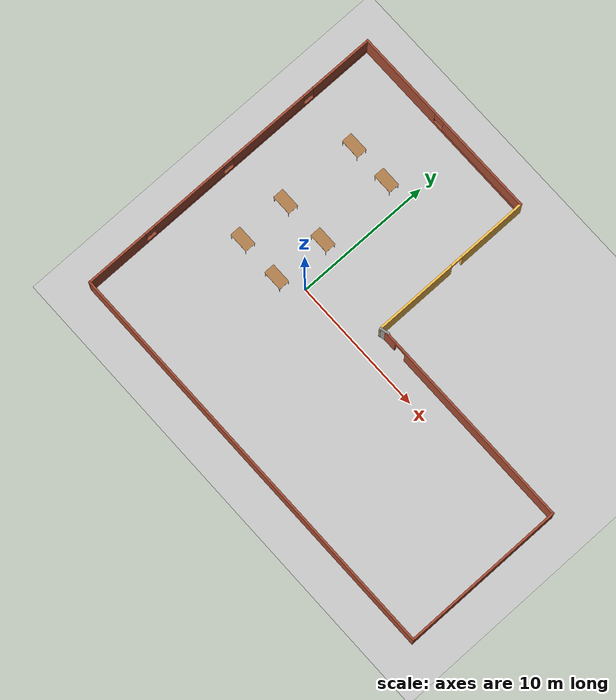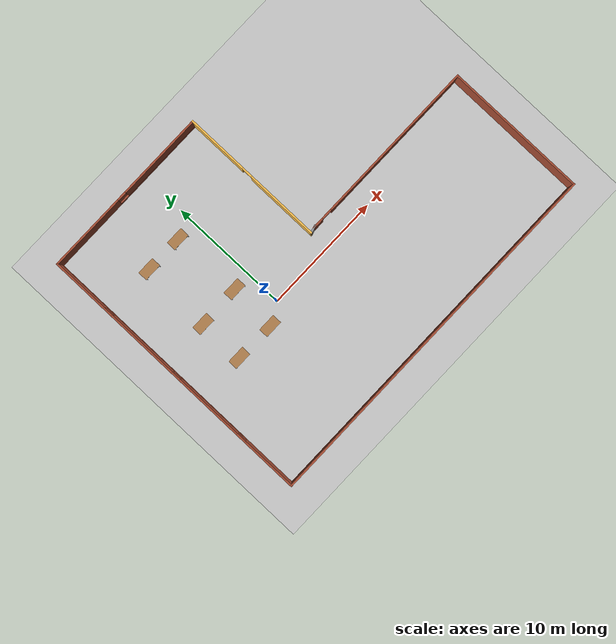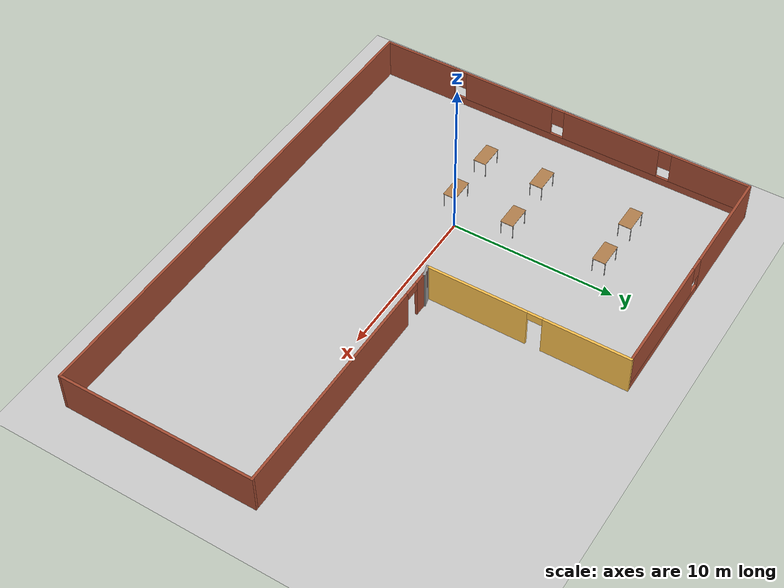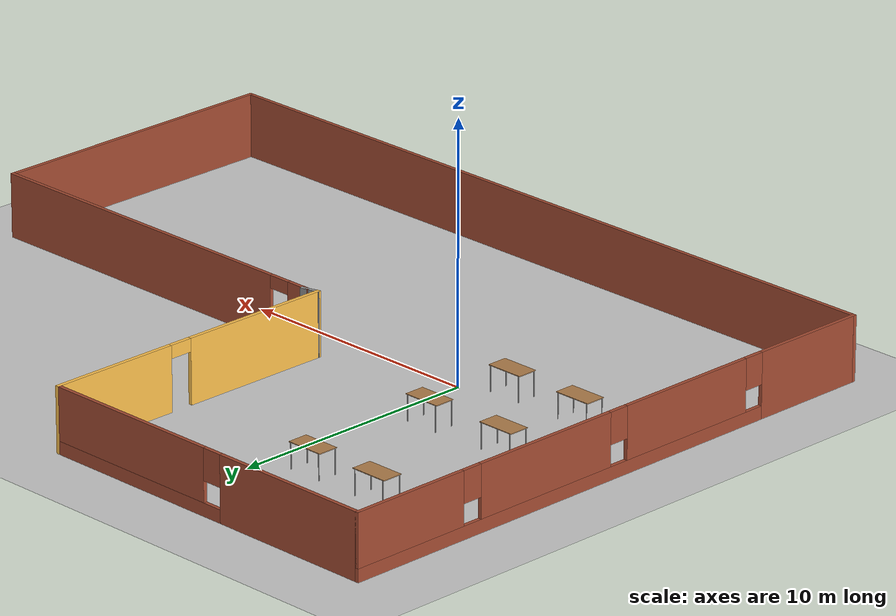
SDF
<sdf version="1.6">
 <world name="default">
  <light name="sun" type="directional">
   <pose>0 0 10 0 -0 0</pose>
   <diffuse>0.8 0.8 0.8 1</diffuse>
   <specular>0.2 0.2 0.2 1</specular>
   <attenuation>
    <range>1000</range>
    <constant>0.9</constant>
    <linear>0.01</linear>
    <quadratic>0.001</quadratic>
   </attenuation>
   <direction>-0.5 0.1 -0.9</direction>
  </light>
  <model name="ground_plane">
   <static>1</static>
   <link name="link">
    <collision name="collision">
     <geometry><plane><normal>0 0 1</normal><size>100 100</size></plane></geometry>
     <surface>
      <contact><collide_bitmask>65535</collide_bitmask></contact>
      <friction><ode><mu>100</mu><mu2>50</mu2></ode></friction>
     </surface>
    </collision>
    <visual name="visual">
     <cast_shadows>0</cast_shadows>
     <geometry><plane><normal>0 0 1</normal><size>100 100</size></plane></geometry>
     <material>
      <script><uri>file://media/materials/scripts/gazebo.material</uri><name>Gazebo/Grey</name></script>
     </material>
    </visual>
   </link>
  </model>
  <gravity>0 0 -9.8</gravity>
  <magnetic_field>6e-06 2.3e-05 -4.2e-05</magnetic_field>
  <atmosphere type="adiabatic"/>
  <physics name="default_physics" default="0" type="ode">
   <max_step_size>0.001</max_step_size>
   <real_time_factor>1</real_time_factor>
   <real_time_update_rate>1000</real_time_update_rate>
  </physics>
  <scene><ambient>0.4 0.4 0.4 1</ambient><background>0.7 0.7 0.7 1</background><shadows>1</shadows></scene>
  <spherical_coordinates>
   <surface_model>EARTH_WGS84</surface_model>
   <latitude_deg>0</latitude_deg>
   <longitude_deg>0</longitude_deg>
   <elevation>0</elevation>
   <heading_deg>0</heading_deg>
  </spherical_coordinates>
  <model name="newhouse">
   <pose>6.11591 1.73083 0 0 -0 0</pose>
   <link name="Wall_0">
    <pose>7.5 -0.075 0 0 -0 0</pose>
    <visual name="Wall_0_Visual_0">
     <pose>-7.36319 0 1.25 0 -0 0</pose>
     <geometry><box><size>1.02362 0.15 2.5</size></box></geometry>
     <material>
      <script><uri>file://media/materials/scripts/gazebo.material</uri><name>Gazebo/Bricks</name></script>
      <ambient>1 1 1 1</ambient>
     </material>
     <meta><layer>0</layer></meta>
    </visual>
    <collision name="Wall_0_Collision_0">
     <geometry><box><size>1.02362 0.15 2.5</size></box></geometry>
     <pose>-7.36319 0 1.25 0 -0 0</pose>
    </collision>
    <visual name="Wall_0_Visual_1">
     <pose>0.96181 0 1.25 0 -0 0</pose>
     <geometry><box><size>13.8264 0.15 2.5</size></box></geometry>
     <material>
      <script><uri>file://media/materials/scripts/gazebo.material</uri><name>Gazebo/Bricks</name></script>
      <ambient>1 1 1 1</ambient>
     </material>
     <meta><layer>0</layer></meta>
    </visual>
    <collision name="Wall_0_Collision_1">
     <geometry><box><size>13.8264 0.15 2.5</size></box></geometry>
     <pose>0.96181 0 1.25 0 -0 0</pose>
    </collision>
    <visual name="Wall_0_Visual_2">
     <pose>-6.40138 0 2.25 0 -0 0</pose>
     <geometry><box><size>0.9 0.15 0.5</size></box></geometry>
     <material>
      <script><uri>file://media/materials/scripts/gazebo.material</uri><name>Gazebo/Bricks</name></script>
      <ambient>1 1 1 1</ambient>
     </material>
     <meta><layer>0</layer></meta>
    </visual>
    <collision name="Wall_0_Collision_2">
     <geometry><box><size>0.9 0.15 0.5</size></box></geometry>
     <pose>-6.40138 0 2.25 0 -0 0</pose>
    </collision>
   </link>
   <link name="Wall_1">
    <collision name="Wall_1_Collision">
     <geometry><box><size>12 0.15 2.5</size></box></geometry>
     <pose>0 0 1.25 0 -0 0</pose>
    </collision>
    <visual name="Wall_1_Visual">
     <pose>0 0 1.25 0 -0 0</pose>
     <geometry><box><size>12 0.15 2.5</size></box></geometry>
     <material>
      <script><uri>file://media/materials/scripts/gazebo.material</uri><name>Gazebo/Bricks</name></script>
      <ambient>1 1 1 1</ambient>
     </material>
     <meta><layer>0</layer></meta>
    </visual>
    <pose>15.3 -6 0 0 0 -1.5708</pose>
   </link>
   <link name="Wall_2">
    <collision name="Wall_2_Collision">
     <geometry><box><size>30.75 0.15 2.5</size></box></geometry>
     <pose>0 0 1.25 0 -0 0</pose>
    </collision>
    <visual name="Wall_2_Visual">
     <pose>0 0 1.25 0 -0 0</pose>
     <geometry><box><size>30.75 0.15 2.5</size></box></geometry>
     <material>
      <script><uri>file://media/materials/scripts/gazebo.material</uri><name>Gazebo/Bricks</name></script>
      <ambient>1 1 1 1</ambient>
     </material>
     <meta><layer>0</layer></meta>
    </visual>
    <pose>0 -11.925 0 0 -0 3.14159</pose>
   </link>
   <link name="Wall_3">
    <pose>-15.3 0 0 0 -0 1.5708</pose>
    <visual name="Wall_3_Visual_0">
     <pose>-9.60839 0 1.25 0 -0 0</pose>
     <geometry><box><size>4.78322 0.15 2.5</size></box></geometry>
     <material>
      <script><uri>file://media/materials/scripts/gazebo.material</uri><name>Gazebo/Bricks</name></script>
      <ambient>1 1 1 1</ambient>
     </material>
     <meta><layer>0</layer></meta>
    </visual>
    <collision name="Wall_3_Collision_0">
     <geometry><box><size>4.78322 0.15 2.5</size></box></geometry>
     <pose>-9.60839 0 1.25 0 -0 0</pose>
    </collision>
    <visual name="Wall_3_Visual_1">
     <pose>2.39161 0 0.25 0 -0 0</pose>
     <geometry><box><size>19.2168 0.15 0.5</size></box></geometry>
     <material>
      <script><uri>file://media/materials/scripts/gazebo.material</uri><name>Gazebo/Bricks</name></script>
      <ambient>1 1 1 1</ambient>
     </material>
     <meta><layer>0</layer></meta>
    </visual>
    <collision name="Wall_3_Collision_1">
     <geometry><box><size>19.2168 0.15 0.5</size></box></geometry>
     <pose>2.39161 0 0.25 0 -0 0</pose>
    </collision>
    <visual name="Wall_3_Visual_2">
     <pose>-3.49367 0 1.5 0 -0 0</pose>
     <geometry><box><size>5.84622 0.15 2</size></box></geometry>
     <material>
      <script><uri>file://media/materials/scripts/gazebo.material</uri><name>Gazebo/Bricks</name></script>
      <ambient>1 1 1 1</ambient>
     </material>
     <meta><layer>0</layer></meta>
    </visual>
    <collision name="Wall_3_Collision_2">
     <geometry><box><size>5.84622 0.15 2</size></box></geometry>
     <pose>-3.49367 0 1.5 0 -0 0</pose>
    </collision>
    <visual name="Wall_3_Visual_3">
     <pose>3.29248 0 1.5 0 -0 0</pose>
     <geometry><box><size>6.12606 0.15 2</size></box></geometry>
     <material>
      <script><uri>file://media/materials/scripts/gazebo.material</uri><name>Gazebo/Bricks</name></script>
      <ambient>1 1 1 1</ambient>
     </material>
     <meta><layer>0</layer></meta>
    </visual>
    <collision name="Wall_3_Collision_3">
     <geometry><box><size>6.12606 0.15 2</size></box></geometry>
     <pose>3.29248 0 1.5 0 -0 0</pose>
    </collision>
    <visual name="Wall_3_Visual_4">
     <pose>9.57775 0 1.5 0 -0 0</pose>
     <geometry><box><size>4.84449 0.15 2</size></box></geometry>
     <material>
      <script><uri>file://media/materials/scripts/gazebo.material</uri><name>Gazebo/Bricks</name></script>
      <ambient>1 1 1 1</ambient>
     </material>
     <meta><layer>0</layer></meta>
    </visual>
    <collision name="Wall_3_Collision_4">
     <geometry><box><size>4.84449 0.15 2</size></box></geometry>
     <pose>9.57775 0 1.5 0 -0 0</pose>
    </collision>
    <visual name="Wall_3_Visual_5">
     <pose>-6.81678 0 1.9 0 -0 0</pose>
     <geometry><box><size>0.8 0.15 1.2</size></box></geometry>
     <material>
      <script><uri>file://media/materials/scripts/gazebo.material</uri><name>Gazebo/Bricks</name></script>
      <ambient>1 1 1 1</ambient>
     </material>
     <meta><layer>0</layer></meta>
    </visual>
    <collision name="Wall_3_Collision_5">
     <geometry><box><size>0.8 0.15 1.2</size></box></geometry>
     <pose>-6.81678 0 1.9 0 -0 0</pose>
    </collision>
    <visual name="Wall_3_Visual_6">
     <pose>-0.170557 0 1.9 0 -0 0</pose>
     <geometry><box><size>0.8 0.15 1.2</size></box></geometry>
     <material>
      <script><uri>file://media/materials/scripts/gazebo.material</uri><name>Gazebo/Bricks</name></script>
      <ambient>1 1 1 1</ambient>
     </material>
     <meta><layer>0</layer></meta>
    </visual>
    <collision name="Wall_3_Collision_6">
     <geometry><box><size>0.8 0.15 1.2</size></box></geometry>
     <pose>-0.170557 0 1.9 0 -0 0</pose>
    </collision>
    <visual name="Wall_3_Visual_7">
     <pose>6.75551 0 1.9 0 -0 0</pose>
     <geometry><box><size>0.8 0.15 1.2</size></box></geometry>
     <material>
      <script><uri>file://media/materials/scripts/gazebo.material</uri><name>Gazebo/Bricks</name></script>
      <ambient>1 1 1 1</ambient>
     </material>
     <meta><layer>0</layer></meta>
    </visual>
    <collision name="Wall_3_Collision_7">
     <geometry><box><size>0.8 0.15 1.2</size></box></geometry>
     <pose>6.75551 0 1.9 0 -0 0</pose>
    </collision>
   </link>
   <link name="Wall_4">
    <pose>-8 11.925 0 0 -0 0</pose>
    <visual name="Wall_4_Visual_0">
     <pose>-4.07996 0 1.25 0 -0 0</pose>
     <geometry><box><size>6.59007 0.15 2.5</size></box></geometry>
     <material>
      <script><uri>file://media/materials/scripts/gazebo.material</uri><name>Gazebo/Bricks</name></script>
      <ambient>1 1 1 1</ambient>
     </material>
     <meta><layer>0</layer></meta>
    </visual>
    <collision name="Wall_4_Collision_0">
     <geometry><box><size>6.59007 0.15 2.5</size></box></geometry>
     <pose>-4.07996 0 1.25 0 -0 0</pose>
    </collision>
    <visual name="Wall_4_Visual_1">
     <pose>3.29504 0 0.25 0 -0 0</pose>
     <geometry><box><size>8.15993 0.15 0.5</size></box></geometry>
     <material>
      <script><uri>file://media/materials/scripts/gazebo.material</uri><name>Gazebo/Bricks</name></script>
      <ambient>1 1 1 1</ambient>
     </material>
     <meta><layer>0</layer></meta>
    </visual>
    <collision name="Wall_4_Collision_1">
     <geometry><box><size>8.15993 0.15 0.5</size></box></geometry>
     <pose>3.29504 0 0.25 0 -0 0</pose>
    </collision>
    <visual name="Wall_4_Visual_2">
     <pose>3.69504 0 1.5 0 -0 0</pose>
     <geometry><box><size>7.35993 0.15 2</size></box></geometry>
     <material>
      <script><uri>file://media/materials/scripts/gazebo.material</uri><name>Gazebo/Bricks</name></script>
      <ambient>1 1 1 1</ambient>
     </material>
     <meta><layer>0</layer></meta>
    </visual>
    <collision name="Wall_4_Collision_2">
     <geometry><box><size>7.35993 0.15 2</size></box></geometry>
     <pose>3.69504 0 1.5 0 -0 0</pose>
    </collision>
    <visual name="Wall_4_Visual_3">
     <pose>-0.384929 0 1.9 0 -0 0</pose>
     <geometry><box><size>0.8 0.15 1.2</size></box></geometry>
     <material>
      <script><uri>file://media/materials/scripts/gazebo.material</uri><name>Gazebo/Bricks</name></script>
      <ambient>1 1 1 1</ambient>
     </material>
     <meta><layer>0</layer></meta>
    </visual>
    <collision name="Wall_4_Collision_3">
     <geometry><box><size>0.8 0.15 1.2</size></box></geometry>
     <pose>-0.384929 0 1.9 0 -0 0</pose>
    </collision>
   </link>
   <link name="Wall_5">
    <pose>-0.7 5.875 0 0 0 -1.5708</pose>
    <visual name="Wall_5_Visual_0">
     <pose>-3.53226 0 1.25 0 -0 0</pose>
     <geometry><box><size>5.18548 0.15 2.5</size></box></geometry>
     <material>
      <script><uri>file://media/materials/scripts/gazebo.material</uri><name>Gazebo/Grey</name></script>
      <ambient>1 0.764706 0.305882 1</ambient>
     </material>
     <meta><layer>0</layer></meta>
    </visual>
    <collision name="Wall_5_Collision_0">
     <geometry><box><size>5.18548 0.15 2.5</size></box></geometry>
     <pose>-3.53226 0 1.25 0 -0 0</pose>
    </collision>
    <visual name="Wall_5_Visual_1">
     <pose>3.04274 0 1.25 0 -0 0</pose>
     <geometry><box><size>6.16452 0.15 2.5</size></box></geometry>
     <material>
      <script><uri>file://media/materials/scripts/gazebo.material</uri><name>Gazebo/Grey</name></script>
      <ambient>1 0.764706 0.305882 1</ambient>
     </material>
     <meta><layer>0</layer></meta>
    </visual>
    <collision name="Wall_5_Collision_1">
     <geometry><box><size>6.16452 0.15 2.5</size></box></geometry>
     <pose>3.04274 0 1.25 0 -0 0</pose>
    </collision>
    <visual name="Wall_5_Visual_2">
     <pose>-0.489516 0 2.25 0 -0 0</pose>
     <geometry><box><size>0.9 0.15 0.5</size></box></geometry>
     <material>
      <script><uri>file://media/materials/scripts/gazebo.material</uri><name>Gazebo/Grey</name></script>
      <ambient>1 0.764706 0.305882 1</ambient>
     </material>
     <meta><layer>0</layer></meta>
    </visual>
    <collision name="Wall_5_Collision_2">
     <geometry><box><size>0.9 0.15 0.5</size></box></geometry>
     <pose>-0.489516 0 2.25 0 -0 0</pose>
    </collision>
   </link>
   <link name="Wall_6">
    <collision name="Wall_6_Collision">
     <geometry><box><size>0.75 0.15 2.5</size></box></geometry>
     <pose>0 0 1.25 0 -0 0</pose>
    </collision>
    <visual name="Wall_6_Visual">
     <pose>0 0 1.25 0 -0 0</pose>
     <geometry><box><size>0.75 0.15 2.5</size></box></geometry>
     <material>
      <script><uri>file://media/materials/scripts/gazebo.material</uri><name>Gazebo/Grey</name></script>
      <ambient>1 1 1 1</ambient>
     </material>
     <meta><layer>0</layer></meta>
    </visual>
    <pose>-0.410222 -0.097354 0 0 -0 0.261799</pose>
   </link>
   <static>1</static>
  </model>
  <model name="table">
   <static>1</static>
   <link name="link">
    <collision name="surface">
     <pose>0 0 1 0 -0 0</pose>
     <geometry><box><size>1.5 0.8 0.03</size></box></geometry>
     <surface><friction><ode><mu>0.6</mu><mu2>0.6</mu2></ode></friction></surface>
    </collision>
    <visual name="visual1">
     <pose>0 0 1 0 -0 0</pose>
     <geometry><box><size>1.5 0.8 0.03</size></box></geometry>
     <material>
      <script><uri>file://media/materials/scripts/gazebo.material</uri><name>Gazebo/Wood</name></script>
     </material>
    </visual>
    <collision name="front_left_leg">
     <pose>0.68 0.38 0.5 0 -0 0</pose>
     <geometry><cylinder><radius>0.02</radius><length>1</length></cylinder></geometry>
    </collision>
    <visual name="front_left_leg">
     <pose>0.68 0.38 0.5 0 -0 0</pose>
     <geometry><cylinder><radius>0.02</radius><length>1</length></cylinder></geometry>
     <material>
      <script><uri>file://media/materials/scripts/gazebo.material</uri><name>Gazebo/Grey</name></script>
     </material>
    </visual>
    <collision name="front_right_leg">
     <pose>0.68 -0.38 0.5 0 -0 0</pose>
     <geometry><cylinder><radius>0.02</radius><length>1</length></cylinder></geometry>
    </collision>
    <visual name="front_right_leg">
     <pose>0.68 -0.38 0.5 0 -0 0</pose>
     <geometry><cylinder><radius>0.02</radius><length>1</length></cylinder></geometry>
     <material>
      <script><uri>file://media/materials/scripts/gazebo.material</uri><name>Gazebo/Grey</name></script>
     </material>
    </visual>
    <collision name="back_right_leg">
     <pose>-0.68 -0.38 0.5 0 -0 0</pose>
     <geometry><cylinder><radius>0.02</radius><length>1</length></cylinder></geometry>
    </collision>
    <visual name="back_right_leg">
     <pose>-0.68 -0.38 0.5 0 -0 0</pose>
     <geometry><cylinder><radius>0.02</radius><length>1</length></cylinder></geometry>
     <material>
      <script><uri>file://media/materials/scripts/gazebo.material</uri><name>Gazebo/Grey</name></script>
     </material>
    </visual>
    <collision name="back_left_leg">
     <pose>-0.68 0.38 0.5 0 -0 0</pose>
     <geometry><cylinder><radius>0.02</radius><length>1</length></cylinder></geometry>
    </collision>
    <visual name="back_left_leg">
     <pose>-0.68 0.38 0.5 0 -0 0</pose>
     <geometry><cylinder><radius>0.02</radius><length>1</length></cylinder></geometry>
     <material>
      <script><uri>file://media/materials/scripts/gazebo.material</uri><name>Gazebo/Grey</name></script>
     </material>
    </visual>
   </link>
   <pose>-4.83422 8.59442 0 0 -0 0</pose>
  </model>
  <model name="table_0">
   <static>1</static>
   <link name="link">
    <collision name="surface">
     <pose>0 0 1 0 -0 0</pose>
     <geometry><box><size>1.5 0.8 0.03</size></box></geometry>
     <surface><friction><ode><mu>0.6</mu><mu2>0.6</mu2></ode></friction></surface>
    </collision>
    <visual name="visual1">
     <pose>0 0 1 0 -0 0</pose>
     <geometry><box><size>1.5 0.8 0.03</size></box></geometry>
     <material>
      <script><uri>file://media/materials/scripts/gazebo.material</uri><name>Gazebo/Wood</name></script>
     </material>
    </visual>
    <collision name="front_left_leg">
     <pose>0.68 0.38 0.5 0 -0 0</pose>
     <geometry><cylinder><radius>0.02</radius><length>1</length></cylinder></geometry>
    </collision>
    <visual name="front_left_leg">
     <pose>0.68 0.38 0.5 0 -0 0</pose>
     <geometry><cylinder><radius>0.02</radius><length>1</length></cylinder></geometry>
     <material>
      <script><uri>file://media/materials/scripts/gazebo.material</uri><name>Gazebo/Grey</name></script>
     </material>
    </visual>
    <collision name="front_right_leg">
     <pose>0.68 -0.38 0.5 0 -0 0</pose>
     <geometry><cylinder><radius>0.02</radius><length>1</length></cylinder></geometry>
    </collision>
    <visual name="front_right_leg">
     <pose>0.68 -0.38 0.5 0 -0 0</pose>
     <geometry><cylinder><radius>0.02</radius><length>1</length></cylinder></geometry>
     <material>
      <script><uri>file://media/materials/scripts/gazebo.material</uri><name>Gazebo/Grey</name></script>
     </material>
    </visual>
    <collision name="back_right_leg">
     <pose>-0.68 -0.38 0.5 0 -0 0</pose>
     <geometry><cylinder><radius>0.02</radius><length>1</length></cylinder></geometry>
    </collision>
    <visual name="back_right_leg">
     <pose>-0.68 -0.38 0.5 0 -0 0</pose>
     <geometry><cylinder><radius>0.02</radius><length>1</length></cylinder></geometry>
     <material>
      <script><uri>file://media/materials/scripts/gazebo.material</uri><name>Gazebo/Grey</name></script>
     </material>
    </visual>
    <collision name="back_left_leg">
     <pose>-0.68 0.38 0.5 0 -0 0</pose>
     <geometry><cylinder><radius>0.02</radius><length>1</length></cylinder></geometry>
    </collision>
    <visual name="back_left_leg">
     <pose>-0.68 0.38 0.5 0 -0 0</pose>
     <geometry><cylinder><radius>0.02</radius><length>1</length></cylinder></geometry>
     <material>
      <script><uri>file://media/materials/scripts/gazebo.material</uri><name>Gazebo/Grey</name></script>
     </material>
    </visual>
   </link>
   <pose>-5.03495 2.81464 0 0 -0 0</pose>
  </model>
  <model name="table_1">
   <static>1</static>
   <link name="link">
    <collision name="surface">
     <pose>0 0 1 0 -0 0</pose>
     <geometry><box><size>1.5 0.8 0.03</size></box></geometry>
     <surface><friction><ode><mu>0.6</mu><mu2>0.6</mu2></ode></friction></surface>
    </collision>
    <visual name="visual1">
     <pose>0 0 1 0 -0 0</pose>
     <geometry><box><size>1.5 0.8 0.03</size></box></geometry>
     <material>
      <script><uri>file://media/materials/scripts/gazebo.material</uri><name>Gazebo/Wood</name></script>
     </material>
    </visual>
    <collision name="front_left_leg">
     <pose>0.68 0.38 0.5 0 -0 0</pose>
     <geometry><cylinder><radius>0.02</radius><length>1</length></cylinder></geometry>
    </collision>
    <visual name="front_left_leg">
     <pose>0.68 0.38 0.5 0 -0 0</pose>
     <geometry><cylinder><radius>0.02</radius><length>1</length></cylinder></geometry>
     <material>
      <script><uri>file://media/materials/scripts/gazebo.material</uri><name>Gazebo/Grey</name></script>
     </material>
    </visual>
    <collision name="front_right_leg">
     <pose>0.68 -0.38 0.5 0 -0 0</pose>
     <geometry><cylinder><radius>0.02</radius><length>1</length></cylinder></geometry>
    </collision>
    <visual name="front_right_leg">
     <pose>0.68 -0.38 0.5 0 -0 0</pose>
     <geometry><cylinder><radius>0.02</radius><length>1</length></cylinder></geometry>
     <material>
      <script><uri>file://media/materials/scripts/gazebo.material</uri><name>Gazebo/Grey</name></script>
     </material>
    </visual>
    <collision name="back_right_leg">
     <pose>-0.68 -0.38 0.5 0 -0 0</pose>
     <geometry><cylinder><radius>0.02</radius><length>1</length></cylinder></geometry>
    </collision>
    <visual name="back_right_leg">
     <pose>-0.68 -0.38 0.5 0 -0 0</pose>
     <geometry><cylinder><radius>0.02</radius><length>1</length></cylinder></geometry>
     <material>
      <script><uri>file://media/materials/scripts/gazebo.material</uri><name>Gazebo/Grey</name></script>
     </material>
    </visual>
    <collision name="back_left_leg">
     <pose>-0.68 0.38 0.5 0 -0 0</pose>
     <geometry><cylinder><radius>0.02</radius><length>1</length></cylinder></geometry>
    </collision>
    <visual name="back_left_leg">
     <pose>-0.68 0.38 0.5 0 -0 0</pose>
     <geometry><cylinder><radius>0.02</radius><length>1</length></cylinder></geometry>
     <material>
      <script><uri>file://media/materials/scripts/gazebo.material</uri><name>Gazebo/Grey</name></script>
     </material>
    </visual>
   </link>
   <pose>-5.02835 -0.896447 0 0 -0 0</pose>
  </model>
  <model name="table_2">
   <static>1</static>
   <link name="link">
    <collision name="surface">
     <pose>0 0 1 0 -0 0</pose>
     <geometry><box><size>1.5 0.8 0.03</size></box></geometry>
     <surface><friction><ode><mu>0.6</mu><mu2>0.6</mu2></ode></friction></surface>
    </collision>
    <visual name="visual1">
     <pose>0 0 1 0 -0 0</pose>
     <geometry><box><size>1.5 0.8 0.03</size></box></geometry>
     <material>
      <script><uri>file://media/materials/scripts/gazebo.material</uri><name>Gazebo/Wood</name></script>
     </material>
    </visual>
    <collision name="front_left_leg">
     <pose>0.68 0.38 0.5 0 -0 0</pose>
     <geometry><cylinder><radius>0.02</radius><length>1</length></cylinder></geometry>
    </collision>
    <visual name="front_left_leg">
     <pose>0.68 0.38 0.5 0 -0 0</pose>
     <geometry><cylinder><radius>0.02</radius><length>1</length></cylinder></geometry>
     <material>
      <script><uri>file://media/materials/scripts/gazebo.material</uri><name>Gazebo/Grey</name></script>
     </material>
    </visual>
    <collision name="front_right_leg">
     <pose>0.68 -0.38 0.5 0 -0 0</pose>
     <geometry><cylinder><radius>0.02</radius><length>1</length></cylinder></geometry>
    </collision>
    <visual name="front_right_leg">
     <pose>0.68 -0.38 0.5 0 -0 0</pose>
     <geometry><cylinder><radius>0.02</radius><length>1</length></cylinder></geometry>
     <material>
      <script><uri>file://media/materials/scripts/gazebo.material</uri><name>Gazebo/Grey</name></script>
     </material>
    </visual>
    <collision name="back_right_leg">
     <pose>-0.68 -0.38 0.5 0 -0 0</pose>
     <geometry><cylinder><radius>0.02</radius><length>1</length></cylinder></geometry>
    </collision>
    <visual name="back_right_leg">
     <pose>-0.68 -0.38 0.5 0 -0 0</pose>
     <geometry><cylinder><radius>0.02</radius><length>1</length></cylinder></geometry>
     <material>
      <script><uri>file://media/materials/scripts/gazebo.material</uri><name>Gazebo/Grey</name></script>
     </material>
    </visual>
    <collision name="back_left_leg">
     <pose>-0.68 0.38 0.5 0 -0 0</pose>
     <geometry><cylinder><radius>0.02</radius><length>1</length></cylinder></geometry>
    </collision>
    <visual name="back_left_leg">
     <pose>-0.68 0.38 0.5 0 -0 0</pose>
     <geometry><cylinder><radius>0.02</radius><length>1</length></cylinder></geometry>
     <material>
      <script><uri>file://media/materials/scripts/gazebo.material</uri><name>Gazebo/Grey</name></script>
     </material>
    </visual>
   </link>
   <pose>-1.71695 -0.938815 0 0 -0 0</pose>
  </model>
  <model name="table_3">
   <static>1</static>
   <link name="link">
    <collision name="surface">
     <pose>0 0 1 0 -0 0</pose>
     <geometry><box><size>1.5 0.8 0.03</size></box></geometry>
     <surface><friction><ode><mu>0.6</mu><mu2>0.6</mu2></ode></friction></surface>
    </collision>
    <visual name="visual1">
     <pose>0 0 1 0 -0 0</pose>
     <geometry><box><size>1.5 0.8 0.03</size></box></geometry>
     <material>
      <script><uri>file://media/materials/scripts/gazebo.material</uri><name>Gazebo/Wood</name></script>
     </material>
    </visual>
    <collision name="front_left_leg">
     <pose>0.68 0.38 0.5 0 -0 0</pose>
     <geometry><cylinder><radius>0.02</radius><length>1</length></cylinder></geometry>
    </collision>
    <visual name="front_left_leg">
     <pose>0.68 0.38 0.5 0 -0 0</pose>
     <geometry><cylinder><radius>0.02</radius><length>1</length></cylinder></geometry>
     <material>
      <script><uri>file://media/materials/scripts/gazebo.material</uri><name>Gazebo/Grey</name></script>
     </material>
    </visual>
    <collision name="front_right_leg">
     <pose>0.68 -0.38 0.5 0 -0 0</pose>
     <geometry><cylinder><radius>0.02</radius><length>1</length></cylinder></geometry>
    </collision>
    <visual name="front_right_leg">
     <pose>0.68 -0.38 0.5 0 -0 0</pose>
     <geometry><cylinder><radius>0.02</radius><length>1</length></cylinder></geometry>
     <material>
      <script><uri>file://media/materials/scripts/gazebo.material</uri><name>Gazebo/Grey</name></script>
     </material>
    </visual>
    <collision name="back_right_leg">
     <pose>-0.68 -0.38 0.5 0 -0 0</pose>
     <geometry><cylinder><radius>0.02</radius><length>1</length></cylinder></geometry>
    </collision>
    <visual name="back_right_leg">
     <pose>-0.68 -0.38 0.5 0 -0 0</pose>
     <geometry><cylinder><radius>0.02</radius><length>1</length></cylinder></geometry>
     <material>
      <script><uri>file://media/materials/scripts/gazebo.material</uri><name>Gazebo/Grey</name></script>
     </material>
    </visual>
    <collision name="back_left_leg">
     <pose>-0.68 0.38 0.5 0 -0 0</pose>
     <geometry><cylinder><radius>0.02</radius><length>1</length></cylinder></geometry>
    </collision>
    <visual name="back_left_leg">
     <pose>-0.68 0.38 0.5 0 -0 0</pose>
     <geometry><cylinder><radius>0.02</radius><length>1</length></cylinder></geometry>
     <material>
      <script><uri>file://media/materials/scripts/gazebo.material</uri><name>Gazebo/Grey</name></script>
     </material>
    </visual>
   </link>
   <pose>-1.54336 2.906 0 0 -0 0</pose>
  </model>
  <model name="table_4">
   <static>1</static>
   <link name="link">
    <collision name="surface">
     <pose>0 0 1 0 -0 0</pose>
     <geometry><box><size>1.5 0.8 0.03</size></box></geometry>
     <surface><friction><ode><mu>0.6</mu><mu2>0.6</mu2></ode></friction></surface>
    </collision>
    <visual name="visual1">
     <pose>0 0 1 0 -0 0</pose>
     <geometry><box><size>1.5 0.8 0.03</size></box></geometry>
     <material>
      <script><uri>file://media/materials/scripts/gazebo.material</uri><name>Gazebo/Wood</name></script>
     </material>
    </visual>
    <collision name="front_left_leg">
     <pose>0.68 0.38 0.5 0 -0 0</pose>
     <geometry><cylinder><radius>0.02</radius><length>1</length></cylinder></geometry>
    </collision>
    <visual name="front_left_leg">
     <pose>0.68 0.38 0.5 0 -0 0</pose>
     <geometry><cylinder><radius>0.02</radius><length>1</length></cylinder></geometry>
     <material>
      <script><uri>file://media/materials/scripts/gazebo.material</uri><name>Gazebo/Grey</name></script>
     </material>
    </visual>
    <collision name="front_right_leg">
     <pose>0.68 -0.38 0.5 0 -0 0</pose>
     <geometry><cylinder><radius>0.02</radius><length>1</length></cylinder></geometry>
    </collision>
    <visual name="front_right_leg">
     <pose>0.68 -0.38 0.5 0 -0 0</pose>
     <geometry><cylinder><radius>0.02</radius><length>1</length></cylinder></geometry>
     <material>
      <script><uri>file://media/materials/scripts/gazebo.material</uri><name>Gazebo/Grey</name></script>
     </material>
    </visual>
    <collision name="back_right_leg">
     <pose>-0.68 -0.38 0.5 0 -0 0</pose>
     <geometry><cylinder><radius>0.02</radius><length>1</length></cylinder></geometry>
    </collision>
    <visual name="back_right_leg">
     <pose>-0.68 -0.38 0.5 0 -0 0</pose>
     <geometry><cylinder><radius>0.02</radius><length>1</length></cylinder></geometry>
     <material>
      <script><uri>file://media/materials/scripts/gazebo.material</uri><name>Gazebo/Grey</name></script>
     </material>
    </visual>
    <collision name="back_left_leg">
     <pose>-0.68 0.38 0.5 0 -0 0</pose>
     <geometry><cylinder><radius>0.02</radius><length>1</length></cylinder></geometry>
    </collision>
    <visual name="back_left_leg">
     <pose>-0.68 0.38 0.5 0 -0 0</pose>
     <geometry><cylinder><radius>0.02</radius><length>1</length></cylinder></geometry>
     <material>
      <script><uri>file://media/materials/scripts/gazebo.material</uri><name>Gazebo/Grey</name></script>
     </material>
    </visual>
   </link>
   <pose>-1.72705 8.59205 0 0 -0 0</pose>
  </model>
  <plugin filename="libcollision_map_creator.so" name="collision_map_creator"/>
 </world>
</sdf>
